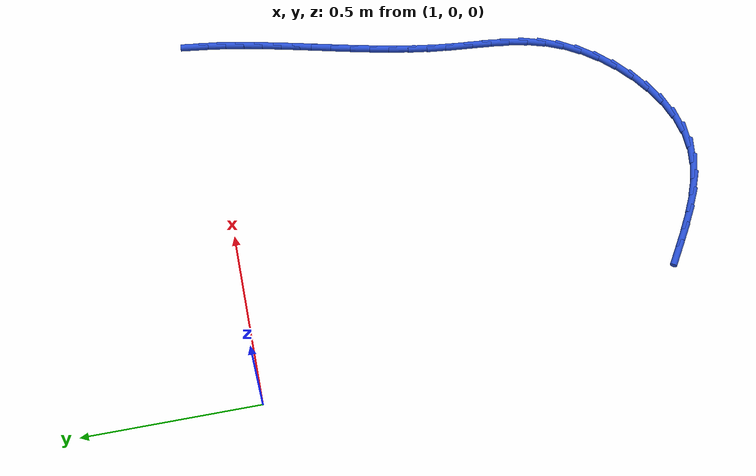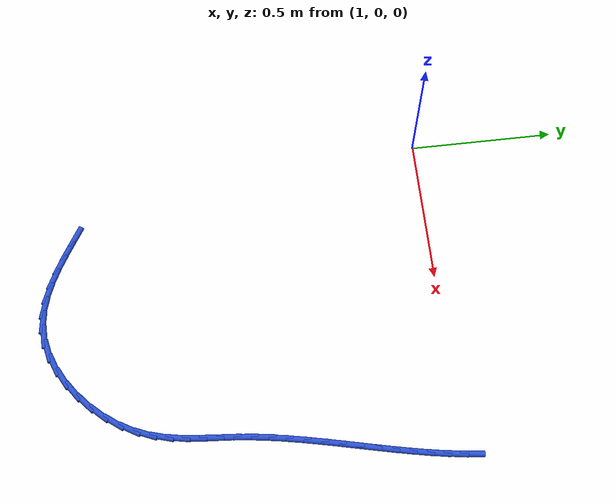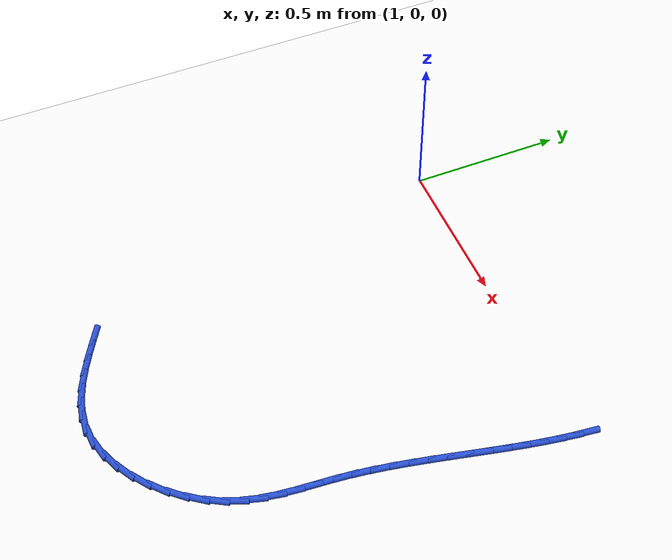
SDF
<sdf version="1.6">
 <world name="default">
  <model name="ground_plane">
   <static>1</static>
   <link name="link">
    <collision name="collision">
     <geometry><plane><normal>0 0 1</normal><size>100 100</size></plane></geometry>
     <surface><friction><ode><mu>100</mu><mu2>50</mu2></ode></friction></surface>
    </collision>
    <visual name="visual">
     <cast_shadows>0</cast_shadows>
     <geometry><plane><normal>0 0 1</normal><size>100 100</size></plane></geometry>
     <material>
      <script><uri>file://media/materials/scripts/gazebo.material</uri><name>Gazebo/WhiteGlow</name></script>
     </material>
    </visual>
   </link>
  </model>
  <model name="line">
   <link name="link_71">
    <pose>2.1135395201341995 0.02356065581516082 0.01 0 1.57 1.4494565704134001</pose>
    <collision name="collision">
     <geometry><cylinder><radius>0.01</radius><length>0.08</length></cylinder></geometry>
    </collision>
    <visual name="visual">
     <material>
      <script><name>Gazebo/Blue</name><uri>file://media/materials/scripts/gazebo.material</uri></script>
     </material>
     <geometry><cylinder><radius>0.01</radius><length>0.08</length></cylinder></geometry>
    </visual>
   </link>
   <link name="link_72">
    <pose>2.107205564075819 -0.02838307669063197 0.01 0 1.57 1.4158729123155471</pose>
    <collision name="collision">
     <geometry><cylinder><radius>0.01</radius><length>0.08</length></cylinder></geometry>
    </collision>
    <visual name="visual">
     <material>
      <script><name>Gazebo/Blue</name><uri>file://media/materials/scripts/gazebo.material</uri></script>
     </material>
     <geometry><cylinder><radius>0.01</radius><length>0.08</length></cylinder></geometry>
    </visual>
   </link>
   <link name="link_73">
    <pose>2.0989700196364165 -0.08111591228439458 0.01 0 1.57 1.3892407552816333</pose>
    <collision name="collision">
     <geometry><cylinder><radius>0.01</radius><length>0.08</length></cylinder></geometry>
    </collision>
    <visual name="visual">
     <material>
      <script><name>Gazebo/Blue</name><uri>file://media/materials/scripts/gazebo.material</uri></script>
     </material>
     <geometry><cylinder><radius>0.01</radius><length>0.08</length></cylinder></geometry>
    </visual>
   </link>
   <link name="link_74">
    <pose>2.0891620940529974 -0.13454265984248137 0.01 0 1.57 1.369026245197287</pose>
    <collision name="collision">
     <geometry><cylinder><radius>0.01</radius><length>0.08</length></cylinder></geometry>
    </collision>
    <visual name="visual">
     <material>
      <script><name>Gazebo/Blue</name><uri>file://media/materials/scripts/gazebo.material</uri></script>
     </material>
     <geometry><cylinder><radius>0.01</radius><length>0.08</length></cylinder></geometry>
    </visual>
   </link>
   <link name="link_75">
    <pose>2.0781109945625635 -0.18856812824124902 0.01 0 1.57 1.354793829775612</pose>
    <collision name="collision">
     <geometry><cylinder><radius>0.01</radius><length>0.08</length></cylinder></geometry>
    </collision>
    <visual name="visual">
     <material>
      <script><name>Gazebo/Blue</name><uri>file://media/materials/scripts/gazebo.material</uri></script>
     </material>
     <geometry><cylinder><radius>0.01</radius><length>0.08</length></cylinder></geometry>
    </visual>
   </link>
   <link name="link_76">
    <pose>2.0661459284021215 -0.24309712635705338 0.01 0 1.57 1.3462110961139544</pose>
    <collision name="collision">
     <geometry><cylinder><radius>0.01</radius><length>0.08</length></cylinder></geometry>
    </collision>
    <visual name="visual">
     <material>
      <script><name>Gazebo/Blue</name><uri>file://media/materials/scripts/gazebo.material</uri></script>
     </material>
     <geometry><cylinder><radius>0.01</radius><length>0.08</length></cylinder></geometry>
    </visual>
   </link>
   <link name="link_77">
    <pose>2.053596102808674 -0.29803446306625037 0.01 0 1.57 1.3430479813313254</pose>
    <collision name="collision">
     <geometry><cylinder><radius>0.01</radius><length>0.08</length></cylinder></geometry>
    </collision>
    <visual name="visual">
     <material>
      <script><name>Gazebo/Blue</name><uri>file://media/materials/scripts/gazebo.material</uri></script>
     </material>
     <geometry><cylinder><radius>0.01</radius><length>0.08</length></cylinder></geometry>
    </visual>
   </link>
   <link name="link_78">
    <pose>2.0407907250192263 -0.3532849472451966 0.01 0 1.57 1.3451734871662269</pose>
    <collision name="collision">
     <geometry><cylinder><radius>0.01</radius><length>0.08</length></cylinder></geometry>
    </collision>
    <visual name="visual">
     <material>
      <script><name>Gazebo/Blue</name><uri>file://media/materials/scripts/gazebo.material</uri></script>
     </material>
     <geometry><cylinder><radius>0.01</radius><length>0.08</length></cylinder></geometry>
    </visual>
   </link>
   <link name="link_79">
    <pose>2.0280590022707825 -0.40875338777024656 0.01 0 1.57 1.3525515263229446</pose>
    <collision name="collision">
     <geometry><cylinder><radius>0.01</radius><length>0.08</length></cylinder></geometry>
    </collision>
    <visual name="visual">
     <material>
      <script><name>Gazebo/Blue</name><uri>file://media/materials/scripts/gazebo.material</uri></script>
     </material>
     <geometry><cylinder><radius>0.01</radius><length>0.08</length></cylinder></geometry>
    </visual>
   </link>
   <link name="link_80">
    <pose>2.015730141800346 -0.4643445935177567 0.01 0 1.57 1.36523646460539</pose>
    <collision name="collision">
     <geometry><cylinder><radius>0.01</radius><length>0.08</length></cylinder></geometry>
    </collision>
    <visual name="visual">
     <material>
      <script><name>Gazebo/Blue</name><uri>file://media/materials/scripts/gazebo.material</uri></script>
     </material>
     <geometry><cylinder><radius>0.01</radius><length>0.08</length></cylinder></geometry>
    </visual>
   </link>
   <link name="link_81">
    <pose>2.0041333508449215 -0.5199633733640829 0.01 0 1.57 1.3833681033161593</pose>
    <collision name="collision">
     <geometry><cylinder><radius>0.01</radius><length>0.08</length></cylinder></geometry>
    </collision>
    <visual name="visual">
     <material>
      <script><name>Gazebo/Blue</name><uri>file://media/materials/scripts/gazebo.material</uri></script>
     </material>
     <geometry><cylinder><radius>0.01</radius><length>0.08</length></cylinder></geometry>
    </visual>
   </link>
   <link name="link_82">
    <pose>1.9935978366415132 -0.5755145361855822 0.01 0 1.57 1.4071651038024962</pose>
    <collision name="collision">
     <geometry><cylinder><radius>0.01</radius><length>0.08</length></cylinder></geometry>
    </collision>
    <visual name="visual">
     <material>
      <script><name>Gazebo/Blue</name><uri>file://media/materials/scripts/gazebo.material</uri></script>
     </material>
     <geometry><cylinder><radius>0.01</radius><length>0.08</length></cylinder></geometry>
    </visual>
   </link>
   <link name="link_83">
    <pose>1.9844528064271252 -0.6309028908586085 0.01 0 1.57 1.4369150660905905</pose>
    <collision name="collision">
     <geometry><cylinder><radius>0.01</radius><length>0.08</length></cylinder></geometry>
    </collision>
    <visual name="visual">
     <material>
      <script><name>Gazebo/Blue</name><uri>file://media/materials/scripts/gazebo.material</uri></script>
     </material>
     <geometry><cylinder><radius>0.01</radius><length>0.08</length></cylinder></geometry>
    </visual>
   </link>
   <link name="link_84">
    <pose>1.9770274674387625 -0.6860332462595187 0.01 0 1.57 1.4710698186680982</pose>
    <collision name="collision">
     <geometry><cylinder><radius>0.01</radius><length>0.08</length></cylinder></geometry>
    </collision>
    <visual name="visual">
     <material>
      <script><name>Gazebo/Blue</name><uri>file://media/materials/scripts/gazebo.material</uri></script>
     </material>
     <geometry><cylinder><radius>0.01</radius><length>0.08</length></cylinder></geometry>
    </visual>
   </link>
   <link name="link_85">
    <pose>1.971546652787522 -0.7408093845928616 0.01 0 1.57 1.4900256893813428</pose>
    <collision name="collision">
     <geometry><cylinder><radius>0.01</radius><length>0.08</length></cylinder></geometry>
    </collision>
    <visual name="visual">
     <material>
      <script><name>Gazebo/Blue</name><uri>file://media/materials/scripts/gazebo.material</uri></script>
     </material>
     <geometry><cylinder><radius>0.01</radius><length>0.08</length></cylinder></geometry>
    </visual>
   </link>
   <link name="link_86">
    <pose>1.9671500280511152 -0.795124413857269 0.01 0 1.57 1.481411118621205</pose>
    <collision name="collision">
     <geometry><cylinder><radius>0.01</radius><length>0.08</length></cylinder></geometry>
    </collision>
    <visual name="visual">
     <material>
      <script><name>Gazebo/Blue</name><uri>file://media/materials/scripts/gazebo.material</uri></script>
     </material>
     <geometry><cylinder><radius>0.01</radius><length>0.08</length></cylinder></geometry>
    </visual>
   </link>
   <link name="link_87">
    <pose>1.962333570487084 -0.8488651104376221 0.01 0 1.57 1.4442679698666003</pose>
    <collision name="collision">
     <geometry><cylinder><radius>0.01</radius><length>0.08</length></cylinder></geometry>
    </collision>
    <visual name="visual">
     <material>
      <script><name>Gazebo/Blue</name><uri>file://media/materials/scripts/gazebo.material</uri></script>
     </material>
     <geometry><cylinder><radius>0.01</radius><length>0.08</length></cylinder></geometry>
    </visual>
   </link>
   <link name="link_88">
    <pose>1.9555848012061297 -0.9019181675402597 0.01 0 1.57 1.3781319599760538</pose>
    <collision name="collision">
     <geometry><cylinder><radius>0.01</radius><length>0.08</length></cylinder></geometry>
    </collision>
    <visual name="visual">
     <material>
      <script><name>Gazebo/Blue</name><uri>file://media/materials/scripts/gazebo.material</uri></script>
     </material>
     <geometry><cylinder><radius>0.01</radius><length>0.08</length></cylinder></geometry>
    </visual>
   </link>
   <link name="link_89">
    <pose>1.9453912413189531 -0.9541702783715214 0.01 0 1.57 1.2838225735105437</pose>
    <collision name="collision">
     <geometry><cylinder><radius>0.01</radius><length>0.08</length></cylinder></geometry>
    </collision>
    <visual name="visual">
     <material>
      <script><name>Gazebo/Blue</name><uri>file://media/materials/scripts/gazebo.material</uri></script>
     </material>
     <geometry><cylinder><radius>0.01</radius><length>0.08</length></cylinder></geometry>
    </visual>
   </link>
   <link name="link_90">
    <pose>1.9302404119362537 -1.005508136137747 0.01 0 1.57 1.165534682171573</pose>
    <collision name="collision">
     <geometry><cylinder><radius>0.01</radius><length>0.08</length></cylinder></geometry>
    </collision>
    <visual name="visual">
     <material>
      <script><name>Gazebo/Blue</name><uri>file://media/materials/scripts/gazebo.material</uri></script>
     </material>
     <geometry><cylinder><radius>0.01</radius><length>0.08</length></cylinder></geometry>
    </visual>
   </link>
   <link name="link_91">
    <pose>1.908663253457374 -1.0558034537614167 0.01 0 1.57 1.043882975995537</pose>
    <collision name="collision">
     <geometry><cylinder><radius>0.01</radius><length>0.08</length></cylinder></geometry>
    </collision>
    <visual name="visual">
     <material>
      <script><name>Gazebo/Blue</name><uri>file://media/materials/scripts/gazebo.material</uri></script>
     </material>
     <geometry><cylinder><radius>0.01</radius><length>0.08</length></cylinder></geometry>
    </visual>
   </link>
   <link name="link_92">
    <pose>1.8803079518883061 -1.1045424782384246 0.01 0 1.57 0.9328051296785308</pose>
    <collision name="collision">
     <geometry><cylinder><radius>0.01</radius><length>0.08</length></cylinder></geometry>
    </collision>
    <visual name="visual">
     <material>
      <script><name>Gazebo/Blue</name><uri>file://media/materials/scripts/gazebo.material</uri></script>
     </material>
     <geometry><cylinder><radius>0.01</radius><length>0.08</length></cylinder></geometry>
    </visual>
   </link>
   <link name="link_93">
    <pose>1.8460100931145427 -1.1508017863971947 0.01 0 1.57 0.8278260931363953</pose>
    <collision name="collision">
     <geometry><cylinder><radius>0.01</radius><length>0.08</length></cylinder></geometry>
    </collision>
    <visual name="visual">
     <material>
      <script><name>Gazebo/Blue</name><uri>file://media/materials/scripts/gazebo.material</uri></script>
     </material>
     <geometry><cylinder><radius>0.01</radius><length>0.08</length></cylinder></geometry>
    </visual>
   </link>
   <link name="link_94">
    <pose>1.8066627294794135 -1.1936381283053334 0.01 0 1.57 0.7240691879717912</pose>
    <collision name="collision">
     <geometry><cylinder><radius>0.01</radius><length>0.08</length></cylinder></geometry>
    </collision>
    <visual name="visual">
     <material>
      <script><name>Gazebo/Blue</name><uri>file://media/materials/scripts/gazebo.material</uri></script>
     </material>
     <geometry><cylinder><radius>0.01</radius><length>0.08</length></cylinder></geometry>
    </visual>
   </link>
   <link name="link_95">
    <pose>1.7631589133262495 -1.2321082540304489 0.01 0 1.57 0.6167791932416632</pose>
    <collision name="collision">
     <geometry><cylinder><radius>0.01</radius><length>0.08</length></cylinder></geometry>
    </collision>
    <visual name="visual">
     <material>
      <script><name>Gazebo/Blue</name><uri>file://media/materials/scripts/gazebo.material</uri></script>
     </material>
     <geometry><cylinder><radius>0.01</radius><length>0.08</length></cylinder></geometry>
    </visual>
   </link>
   <link name="link_96">
    <pose>1.716391696998383 -1.265268913640145 0.01 0 1.57 0.5010020748747912</pose>
    <collision name="collision">
     <geometry><cylinder><radius>0.01</radius><length>0.08</length></cylinder></geometry>
    </collision>
    <visual name="visual">
     <material>
      <script><name>Gazebo/Blue</name><uri>file://media/materials/scripts/gazebo.material</uri></script>
     </material>
     <geometry><cylinder><radius>0.01</radius><length>0.08</length></cylinder></geometry>
    </visual>
   </link>
   <link name="link_97">
    <pose>1.6672541328391428 -1.292176857202029 0.01 0 1.57 0.3713789474148197</pose>
    <collision name="collision">
     <geometry><cylinder><radius>0.01</radius><length>0.08</length></cylinder></geometry>
    </collision>
    <visual name="visual">
     <material>
      <script><name>Gazebo/Blue</name><uri>file://media/materials/scripts/gazebo.material</uri></script>
     </material>
     <geometry><cylinder><radius>0.01</radius><length>0.08</length></cylinder></geometry>
    </visual>
   </link>
   <link name="link_98">
    <pose>1.616639273191861 -1.3118888347837083 0.01 0 1.57 0.22229884004313868</pose>
    <collision name="collision">
     <geometry><cylinder><radius>0.01</radius><length>0.08</length></cylinder></geometry>
    </collision>
    <visual name="visual">
     <material>
      <script><name>Gazebo/Blue</name><uri>file://media/materials/scripts/gazebo.material</uri></script>
     </material>
     <geometry><cylinder><radius>0.01</radius><length>0.08</length></cylinder></geometry>
    </visual>
   </link>
   <link name="link_99">
    <pose>1.565440170399868 -1.323461596452788 0.01 0 1.57 0.05074404058570359</pose>
    <collision name="collision">
     <geometry><cylinder><radius>0.01</radius><length>0.08</length></cylinder></geometry>
    </collision>
    <visual name="visual">
     <material>
      <script><name>Gazebo/Blue</name><uri>file://media/materials/scripts/gazebo.material</uri></script>
     </material>
     <geometry><cylinder><radius>0.01</radius><length>0.08</length></cylinder></geometry>
    </visual>
   </link>
   <link name="link_100">
    <pose>1.5145071946450526 -1.3260483620935375 0.01 0 1.57 -0.11802207664955838</pose>
    <collision name="collision">
     <geometry><cylinder><radius>0.01</radius><length>0.08</length></cylinder></geometry>
    </collision>
    <visual name="visual">
     <material>
      <script><name>Gazebo/Blue</name><uri>file://media/materials/scripts/gazebo.material</uri></script>
     </material>
     <geometry><cylinder><radius>0.01</radius><length>0.08</length></cylinder></geometry>
    </visual>
   </link>
   <link name="link_101">
    <pose>1.4641277704716773 -1.3200747159836868 0.01 0 1.57 -0.25860944849690926</pose>
    <collision name="collision">
     <geometry><cylinder><radius>0.01</radius><length>0.08</length></cylinder></geometry>
    </collision>
    <visual name="visual">
     <material>
      <script><name>Gazebo/Blue</name><uri>file://media/materials/scripts/gazebo.material</uri></script>
     </material>
     <geometry><cylinder><radius>0.01</radius><length>0.08</length></cylinder></geometry>
    </visual>
   </link>
   <link name="link_102">
    <pose>1.414191689731415 -1.3068649680432003 0.01 0 1.57 -0.3675489950820821</pose>
    <collision name="collision">
     <geometry><cylinder><radius>0.01</radius><length>0.08</length></cylinder></geometry>
    </collision>
    <visual name="visual">
     <material>
      <script><name>Gazebo/Blue</name><uri>file://media/materials/scripts/gazebo.material</uri></script>
     </material>
     <geometry><cylinder><radius>0.01</radius><length>0.08</length></cylinder></geometry>
    </visual>
   </link>
   <link name="link_103">
    <pose>1.3645803824934783 -1.2877623274134962 0.01 0 1.57 -0.44649747052386196</pose>
    <collision name="collision">
     <geometry><cylinder><radius>0.01</radius><length>0.08</length></cylinder></geometry>
    </collision>
    <visual name="visual">
     <material>
      <script><name>Gazebo/Blue</name><uri>file://media/materials/scripts/gazebo.material</uri></script>
     </material>
     <geometry><cylinder><radius>0.01</radius><length>0.08</length></cylinder></geometry>
    </visual>
   </link>
   <link name="link_104">
    <pose>1.3151752788270783 -1.264110003235992 0.01 0 1.57 -0.498695774552913</pose>
    <collision name="collision">
     <geometry><cylinder><radius>0.01</radius><length>0.08</length></cylinder></geometry>
    </collision>
    <visual name="visual">
     <material>
      <script><name>Gazebo/Blue</name><uri>file://media/materials/scripts/gazebo.material</uri></script>
     </material>
     <geometry><cylinder><radius>0.01</radius><length>0.08</length></cylinder></geometry>
    </visual>
   </link>
   <link name="link_105">
    <pose>1.2658578088014278 -1.2372512046521054 0.01 0 1.57 -0.5270985995758147</pose>
    <collision name="collision">
     <geometry><cylinder><radius>0.01</radius><length>0.08</length></cylinder></geometry>
    </collision>
    <visual name="visual">
     <material>
      <script><name>Gazebo/Blue</name><uri>file://media/materials/scripts/gazebo.material</uri></script>
     </material>
     <geometry><cylinder><radius>0.01</radius><length>0.08</length></cylinder></geometry>
    </visual>
   </link>
   <link name="link_106">
    <pose>1.2165094024857388 -1.2085291408032544 0.01 0 1.57 -0.5336086589875081</pose>
    <collision name="collision">
     <geometry><cylinder><radius>0.01</radius><length>0.08</length></cylinder></geometry>
    </collision>
    <visual name="visual">
     <material>
      <script><name>Gazebo/Blue</name><uri>file://media/materials/scripts/gazebo.material</uri></script>
     </material>
     <geometry><cylinder><radius>0.01</radius><length>0.08</length></cylinder></geometry>
    </visual>
   </link>
  </model>
 </world>
</sdf>
